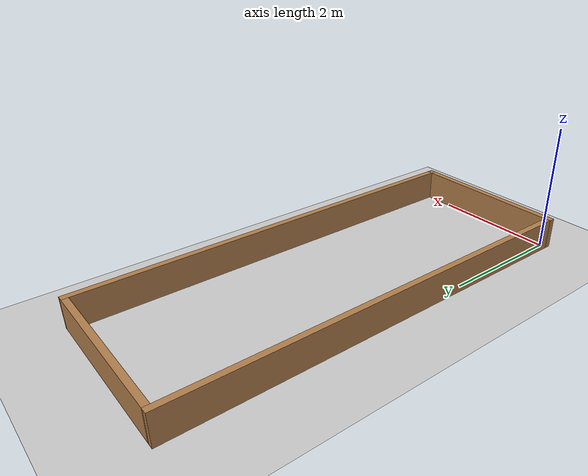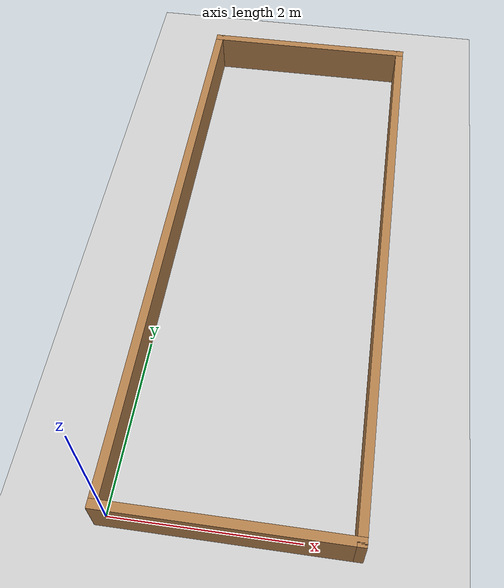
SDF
<sdf version="1.6">
 <world name="flat">
  <include><uri>model://sun</uri></include>
  <include><uri>model://ground_plane</uri></include>
  <physics name="default_physics" default="0" type="ode">
   <max_step_size>0.01</max_step_size>
   <real_time_factor>1</real_time_factor>
   <real_time_update_rate>100</real_time_update_rate>
  </physics>
  <scene><ambient>0.4 0.4 0.4 1</ambient><background>0.7 0.7 0.7 1</background><shadows>0</shadows></scene>
  <model name="moon_arena"><include><uri>model://arena</uri></include></model>
 </world>
</sdf>

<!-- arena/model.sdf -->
<sdf version='1.6'>
  <model name='moon_arena'>
    <pose frame=''>0 0 0 0 -0 0</pose>
    <link name='short_wall_1'>
      <collision name='short_wall_1_Collision'>
        <geometry>
          <box>
            <size>2.7 0.1 0.5</size>
          </box>
        </geometry>
        <pose frame=''>0 0 0.25 0 -0 0</pose>
        <max_contacts>10</max_contacts>
      </collision>
      <visual name='short_wall_1_Visual'>
        <pose frame=''>0 0 0.25 0 -0 0</pose>
        <geometry>
          <box>
            <size>2.7 0.1 0.5</size>
          </box>
        </geometry>
        <material>
          <script>
            <uri>file://media/materials/scripts/gazebo.material</uri>
            <name>Gazebo/Wood</name>
          </script>
          <ambient>1 1 1 1</ambient>
        </material>
        <meta>
          <layer>0</layer>
        </meta>
      </visual>
      <pose frame=''>1.25 -0.05 0 0 -0 0</pose>
      <self_collide>0</self_collide>
      <enable_wind>0</enable_wind>
      <kinematic>0</kinematic>
    </link>
    <link name='long_wall_1'>
      <collision name='long_wall_1_Collision'>
        <geometry>
          <box>
            <size>7.0 0.1 0.5</size>
          </box>
        </geometry>
        <pose frame=''>0 0 0.25 0 -0 0</pose>
        <max_contacts>10</max_contacts>
      </collision>
      <visual name='long_wall_1_Visual'>
        <pose frame=''>0 0 0.25 0 -0 0</pose>
        <geometry>
          <box>
            <size>7.0 0.1 0.5</size>
          </box>
        </geometry>
        <material>
          <script>
            <uri>file://media/materials/scripts/gazebo.material</uri>
            <name>Gazebo/Wood</name>
          </script>
          <ambient>1 1 1 1</ambient>
        </material>
        <meta>
          <layer>0</layer>
        </meta>
      </visual>
      <pose frame=''>-0.05 3.4 0 0 -0 1.5708</pose>
      <self_collide>0</self_collide>
      <enable_wind>0</enable_wind>
      <kinematic>0</kinematic>
    </link>
    <link name='long_wall_2'>
      <collision name='long_wall_2_Collision'>
        <geometry>
          <box>
            <size>7.0 0.1 0.5</size>
          </box>
        </geometry>
        <pose frame=''>0 0 0.25 0 -0 0</pose>
        <max_contacts>10</max_contacts>
      </collision>
      <visual name='long_wall_2_Visual'>
        <pose frame=''>0 0 0.25 0 -0 0</pose>
        <geometry>
          <box>
            <size>7.0 0.1 0.5</size>
          </box>
        </geometry>
        <material>
          <script>
            <uri>file://media/materials/scripts/gazebo.material</uri>
            <name>Gazebo/Wood</name>
          </script>
          <ambient>1 1 1 1</ambient>
        </material>
        <meta>
          <layer>0</layer>
        </meta>
      </visual>
      <pose frame=''>2.55 3.4 0 0 -0 1.5708</pose>
      <self_collide>0</self_collide>
      <enable_wind>0</enable_wind>
      <kinematic>0</kinematic>
    </link>
    <link name='short_wall_2'>
      <collision name='short_wall_2_Collision'>
        <geometry>
          <box>
            <size>2.7 0.1 0.5</size>
          </box>
        </geometry>
        <pose frame=''>0 0 0.25 0 -0 0</pose>
        <max_contacts>10</max_contacts>
      </collision>
      <visual name='short_wall_2_Visual'>
        <pose frame=''>0 0 0.25 0 -0 0</pose>
        <geometry>
          <box>
            <size>2.7 0.1 0.5</size>
          </box>
        </geometry>
        <material>
          <script>
            <uri>file://media/materials/scripts/gazebo.material</uri>
            <name>Gazebo/Wood</name>
          </script>
          <ambient>1 1 1 1</ambient>
        </material>
        <meta>
          <layer>0</layer>
        </meta>
      </visual>
      <pose frame=''>1.25 6.85 0 0 -0 0</pose>
      <self_collide>0</self_collide>
      <enable_wind>0</enable_wind>
      <kinematic>0</kinematic>
    </link>
    <static>1</static>
  </model>
</sdf>
